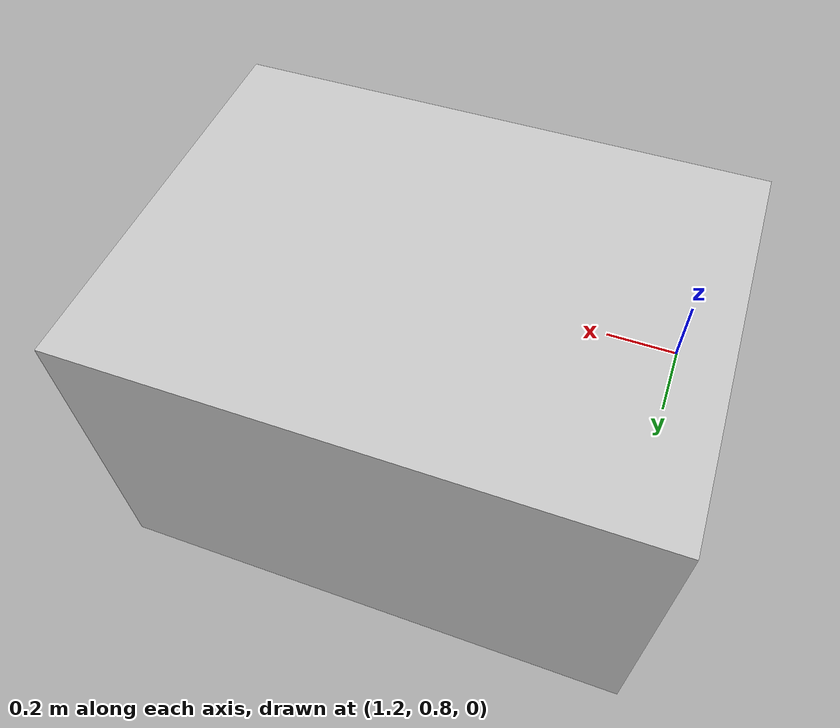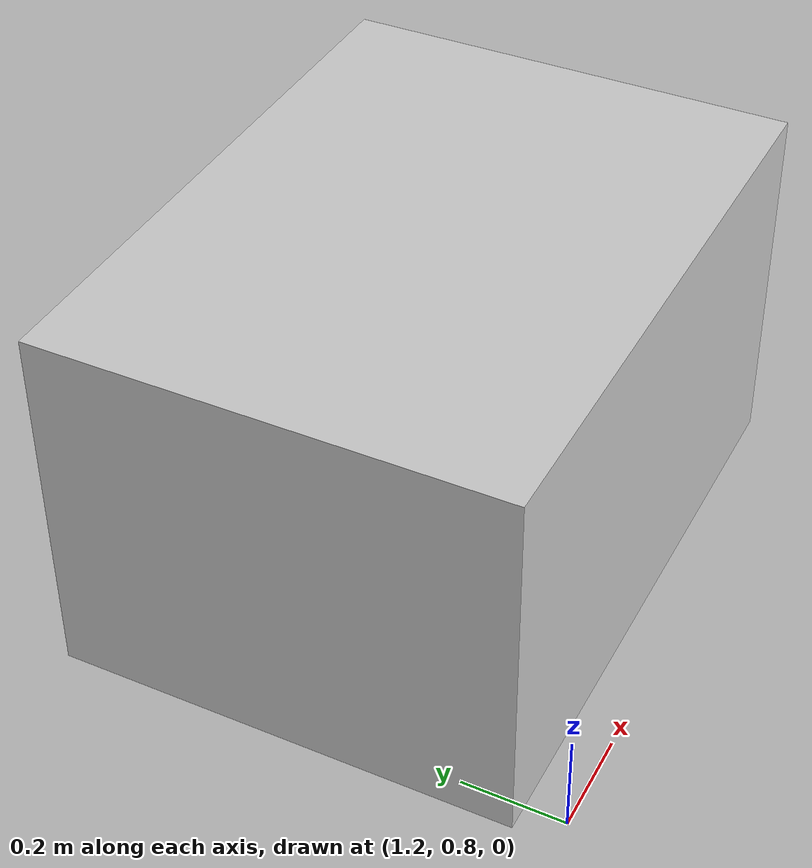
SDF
<?xml version="1.0"?>
<sdf version="1.5">
  <model name="Table_6_model">
<static>
true
</static>
    <link name="Table_6_link">
      <inertial>
        <mass>0.390</mass>
        <inertia>
          <ixx>0.00058</ixx>
          <ixy>0</ixy>
          <ixz>0</ixz>
          <iyy>0.00058</iyy>
          <iyz>0</iyz>
          <izz>0.00019</izz>
        </inertia>
      </inertial>
      <collision name="Table_6_collision">
        <geometry>
          <mesh>
            <uri>model://table_6/meshes/Table_6.dae</uri>
          </mesh>
        </geometry>
        <surface>
          <friction>
            <ode>
              <mu>1.0</mu>
              <mu2>1.0</mu2>
            </ode>
          </friction>
          <contact>
            <ode>
              <kp>10000000.0</kp>
              <kd>1.0</kd>
              <min_depth>0.001</min_depth>
              <max_vel>0.1</max_vel>
            </ode>
          </contact>
        </surface>
      </collision>
      <visual name="Table_6_visual">
        <geometry>
          <mesh>
            <uri>model://table_6/meshes/Table_6.dae</uri>
          </mesh>
        </geometry>
      </visual>
    </link>
  </model>
</sdf>
